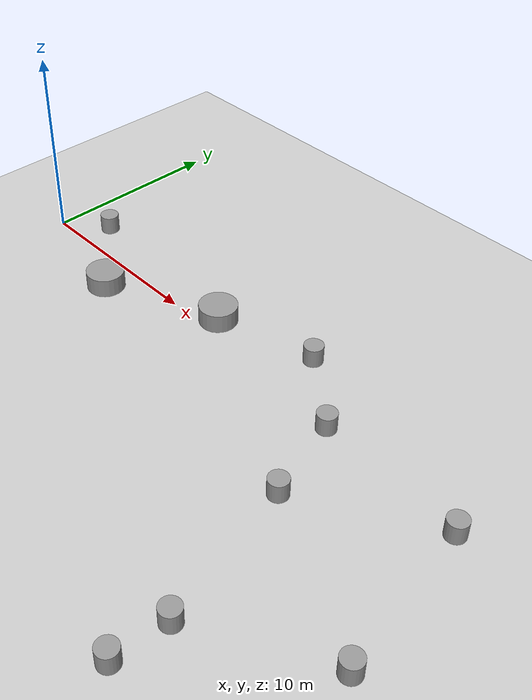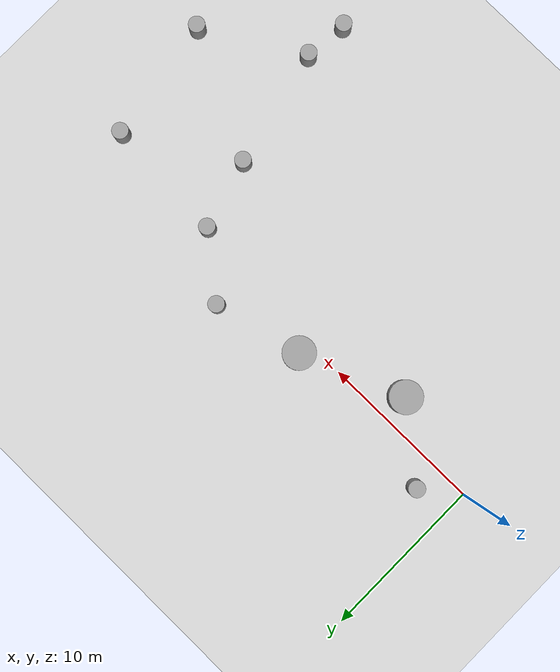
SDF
<sdf version="1.7">
 <world name="default">
  <model name="ground_plane">
   <static>1</static>
   <link name="link">
    <collision name="collision">
     <geometry><plane><normal>0 0 1</normal><size>100 100</size></plane></geometry>
     <surface><friction><ode><mu>100</mu><mu2>50</mu2></ode></friction></surface>
    </collision>
    <visual name="visual">
     <cast_shadows>0</cast_shadows>
     <geometry><plane><normal>0 0 1</normal><size>100 100</size></plane></geometry>
     <material>
      <script><uri>file://media/materials/scripts/gazebo.material</uri><name>Gazebo/Grey</name></script>
     </material>
    </visual>
   </link>
  </model>
  <model name="unit_cylinder_1">
   <pose>17.7165 2.15035 0.499993 -2e-06 -1e-06 0</pose>
   <link name="link">
    <inertial>
     <mass>1</mass>
     <inertia><ixx>0.145833</ixx><ixy>0</ixy><ixz>0</ixz><iyy>0.145833</iyy><iyz>0</iyz><izz>0.125</izz></inertia>
    </inertial>
    <collision name="collision">
     <geometry><cylinder><radius>0.5</radius><length>1</length></cylinder></geometry>
    </collision>
    <visual name="visual">
     <geometry><cylinder><radius>0.5</radius><length>1</length></cylinder></geometry>
     <material>
      <script><name>Gazebo/Grey</name><uri>file://media/materials/scripts/gazebo.material</uri></script>
     </material>
    </visual>
   </link>
  </model>
  <model name="unit_cylinder_1_clone">
   <pose>22.4882 -4.85282 0.499997 0 -0 0</pose>
   <link name="link">
    <inertial>
     <mass>1</mass>
     <inertia><ixx>0.145833</ixx><ixy>0</ixy><ixz>0</ixz><iyy>0.145833</iyy><iyz>0</iyz><izz>0.125</izz></inertia>
    </inertial>
    <collision name="collision">
     <geometry><cylinder><radius>0.5</radius><length>1</length></cylinder></geometry>
    </collision>
    <visual name="visual">
     <geometry><cylinder><radius>0.5</radius><length>1</length></cylinder></geometry>
     <material>
      <script><name>Gazebo/Grey</name><uri>file://media/materials/scripts/gazebo.material</uri></script>
     </material>
    </visual>
   </link>
  </model>
  <model name="unit_cylinder_1_clone_2">
   <pose>2.29461 1.65197 0.499991 0 -0 3.07831</pose>
   <link name="link">
    <inertial>
     <mass>1</mass>
     <inertia><ixx>0.145833</ixx><ixy>0</ixy><ixz>0</ixz><iyy>0.145833</iyy><iyz>0</iyz><izz>0.125</izz></inertia>
    </inertial>
    <collision name="collision">
     <geometry><cylinder><radius>0.5</radius><length>1</length></cylinder></geometry>
    </collision>
    <visual name="visual">
     <geometry><cylinder><radius>0.5</radius><length>1</length></cylinder></geometry>
     <material>
      <script><name>Gazebo/Grey</name><uri>file://media/materials/scripts/gazebo.material</uri></script>
     </material>
    </visual>
   </link>
  </model>
  <model name="unit_cylinder_1m">
   <link name="link">
    <inertial>
     <mass>1</mass>
     <inertia><ixx>0.145833</ixx><ixy>0</ixy><ixz>0</ixz><iyy>0.145833</iyy><iyz>0</iyz><izz>0.125</izz></inertia>
    </inertial>
    <visual name="visual">
     <geometry><cylinder><radius>1</radius><length>1</length></cylinder></geometry>
     <material>
      <script><name>Gazebo/Grey</name><uri>file://media/materials/scripts/gazebo.material</uri></script>
      <shader type="pixel"><normal_map>__default__</normal_map></shader>
      <ambient>0.3 0.3 0.3 1</ambient>
      <diffuse>0.7 0.7 0.7 1</diffuse>
      <specular>0.01 0.01 0.01 1</specular>
      <emissive>0 0 0 1</emissive>
     </material>
    </visual>
    <collision name="collision">
     <geometry><cylinder><radius>1</radius><length>1</length></cylinder></geometry>
     <surface>
      <friction>
       <ode><mu>1</mu><mu2>1</mu2><fdir1>0 0 0</fdir1><slip1>0</slip1><slip2>0</slip2></ode>
       <torsional>
        <coefficient>1</coefficient>
        <patch_radius>0</patch_radius>
        <surface_radius>0</surface_radius>
        <use_patch_radius>1</use_patch_radius>
        <ode><slip>0</slip></ode>
       </torsional>
      </friction>
      <bounce><restitution_coefficient>0</restitution_coefficient><threshold>1e+06</threshold></bounce>
      <contact>
       <collide_without_contact>0</collide_without_contact>
       <collide_without_contact_bitmask>1</collide_without_contact_bitmask>
       <collide_bitmask>1</collide_bitmask>
       <ode>
        <soft_cfm>0</soft_cfm>
        <soft_erp>0.2</soft_erp>
        <kp>1e+13</kp>
        <kd>1</kd>
        <max_vel>0.01</max_vel>
        <min_depth>0</min_depth>
       </ode>
       <bullet>
        <split_impulse>1</split_impulse>
        <split_impulse_penetration_threshold>-0.01</split_impulse_penetration_threshold>
        <soft_cfm>0</soft_cfm>
        <soft_erp>0.2</soft_erp>
        <kp>1e+13</kp>
        <kd>1</kd>
       </bullet>
      </contact>
     </surface>
    </collision>
   </link>
   <static>0</static>
   <pose>12.3833 0.825385 0.499994 -6e-06 6e-06 9.6e-05</pose>
  </model>
  <model name="unit_cylinder_1m_clone">
   <link name="link">
    <inertial>
     <mass>1</mass>
     <inertia><ixx>0.145833</ixx><ixy>0</ixy><ixz>0</ixz><iyy>0.145833</iyy><iyz>0</iyz><izz>0.125</izz></inertia>
    </inertial>
    <visual name="visual">
     <geometry><cylinder><radius>1</radius><length>1</length></cylinder></geometry>
     <material>
      <script><name>Gazebo/Grey</name><uri>file://media/materials/scripts/gazebo.material</uri></script>
      <shader type="pixel"><normal_map>__default__</normal_map></shader>
      <ambient>0.3 0.3 0.3 1</ambient>
      <diffuse>0.7 0.7 0.7 1</diffuse>
      <specular>0.01 0.01 0.01 1</specular>
      <emissive>0 0 0 1</emissive>
     </material>
    </visual>
    <collision name="collision">
     <geometry><cylinder><radius>1</radius><length>1</length></cylinder></geometry>
     <surface>
      <friction>
       <ode><mu>1</mu><mu2>1</mu2><fdir1>0 0 0</fdir1><slip1>0</slip1><slip2>0</slip2></ode>
       <torsional>
        <coefficient>1</coefficient>
        <patch_radius>0</patch_radius>
        <surface_radius>0</surface_radius>
        <use_patch_radius>1</use_patch_radius>
        <ode><slip>0</slip></ode>
       </torsional>
      </friction>
      <bounce><restitution_coefficient>0</restitution_coefficient><threshold>1e+06</threshold></bounce>
      <contact>
       <collide_without_contact>0</collide_without_contact>
       <collide_without_contact_bitmask>1</collide_without_contact_bitmask>
       <collide_bitmask>1</collide_bitmask>
       <ode>
        <soft_cfm>0</soft_cfm>
        <soft_erp>0.2</soft_erp>
        <kp>1e+13</kp>
        <kd>1</kd>
        <max_vel>0.01</max_vel>
        <min_depth>0</min_depth>
       </ode>
       <bullet>
        <split_impulse>1</split_impulse>
        <split_impulse_penetration_threshold>-0.01</split_impulse_penetration_threshold>
        <soft_cfm>0</soft_cfm>
        <soft_erp>0.2</soft_erp>
        <kp>1e+13</kp>
        <kd>1</kd>
       </bullet>
      </contact>
     </surface>
    </collision>
   </link>
   <static>0</static>
   <pose>6.3065 -1.63267 0.499994 6e-06 -7e-06 0.065575</pose>
  </model>
  <model name="unit_cylinder">
   <pose>21.2377 -0.648918 0.499996 3e-06 1e-06 -0</pose>
   <link name="link">
    <inertial>
     <mass>1</mass>
     <inertia><ixx>0.145833</ixx><ixy>0</ixy><ixz>0</ixz><iyy>0.145833</iyy><iyz>0</iyz><izz>0.125</izz></inertia>
    </inertial>
    <collision name="collision">
     <geometry><cylinder><radius>0.5</radius><length>1</length></cylinder></geometry>
    </collision>
    <visual name="visual">
     <geometry><cylinder><radius>0.5</radius><length>1</length></cylinder></geometry>
     <material>
      <script><name>Gazebo/Grey</name><uri>file://media/materials/scripts/gazebo.material</uri></script>
     </material>
    </visual>
   </link>
  </model>
  <model name="unit_cylinder_2">
   <pose>30.014 -8.64443 0.499997 4e-06 1e-06 0</pose>
   <link name="link">
    <inertial>
     <mass>1</mass>
     <inertia><ixx>0.145833</ixx><ixy>0</ixy><ixz>0</ixz><iyy>0.145833</iyy><iyz>0</iyz><izz>0.125</izz></inertia>
    </inertial>
    <collision name="collision">
     <geometry><cylinder><radius>0.5</radius><length>1</length></cylinder></geometry>
    </collision>
    <visual name="visual">
     <geometry><cylinder><radius>0.5</radius><length>1</length></cylinder></geometry>
     <material>
      <script><name>Gazebo/Grey</name><uri>file://media/materials/scripts/gazebo.material</uri></script>
     </material>
    </visual>
   </link>
  </model>
  <model name="unit_cylinder_7">
   <pose>24.1934 -12.0138 0.499996 -4e-06 1e-06 0</pose>
   <link name="link">
    <inertial>
     <mass>1</mass>
     <inertia><ixx>0.145833</ixx><ixy>0</ixy><ixz>0</ixz><iyy>0.145833</iyy><iyz>0</iyz><izz>0.125</izz></inertia>
    </inertial>
    <collision name="collision">
     <geometry><cylinder><radius>0.5</radius><length>1</length></cylinder></geometry>
    </collision>
    <visual name="visual">
     <geometry><cylinder><radius>0.5</radius><length>1</length></cylinder></geometry>
     <material>
      <script><name>Gazebo/Grey</name><uri>file://media/materials/scripts/gazebo.material</uri></script>
     </material>
    </visual>
   </link>
  </model>
  <model name="unit_cylinder_8">
   <pose>23.9566 -14.6869 0.499996 -4e-06 1e-06 0</pose>
   <link name="link">
    <inertial>
     <mass>1</mass>
     <inertia><ixx>0.145833</ixx><ixy>0</ixy><ixz>0</ixz><iyy>0.145833</iyy><iyz>0</iyz><izz>0.125</izz></inertia>
    </inertial>
    <collision name="collision">
     <geometry><cylinder><radius>0.5</radius><length>1</length></cylinder></geometry>
    </collision>
    <visual name="visual">
     <geometry><cylinder><radius>0.5</radius><length>1</length></cylinder></geometry>
     <material>
      <script><name>Gazebo/Grey</name><uri>file://media/materials/scripts/gazebo.material</uri></script>
     </material>
    </visual>
   </link>
  </model>
  <model name="unit_cylinder_14">
   <pose>28.7416 -1.09225 0.499996 4e-06 2e-06 -0</pose>
   <link name="link">
    <inertial>
     <mass>1</mass>
     <inertia><ixx>0.145833</ixx><ixy>0</ixy><ixz>0</ixz><iyy>0.145833</iyy><iyz>0</iyz><izz>0.125</izz></inertia>
    </inertial>
    <collision name="collision">
     <geometry><cylinder><radius>0.5</radius><length>1</length></cylinder></geometry>
    </collision>
    <visual name="visual">
     <geometry><cylinder><radius>0.5</radius><length>1</length></cylinder></geometry>
     <material>
      <script><name>Gazebo/Grey</name><uri>file://media/materials/scripts/gazebo.material</uri></script>
     </material>
    </visual>
   </link>
  </model>
 </world>
</sdf>
